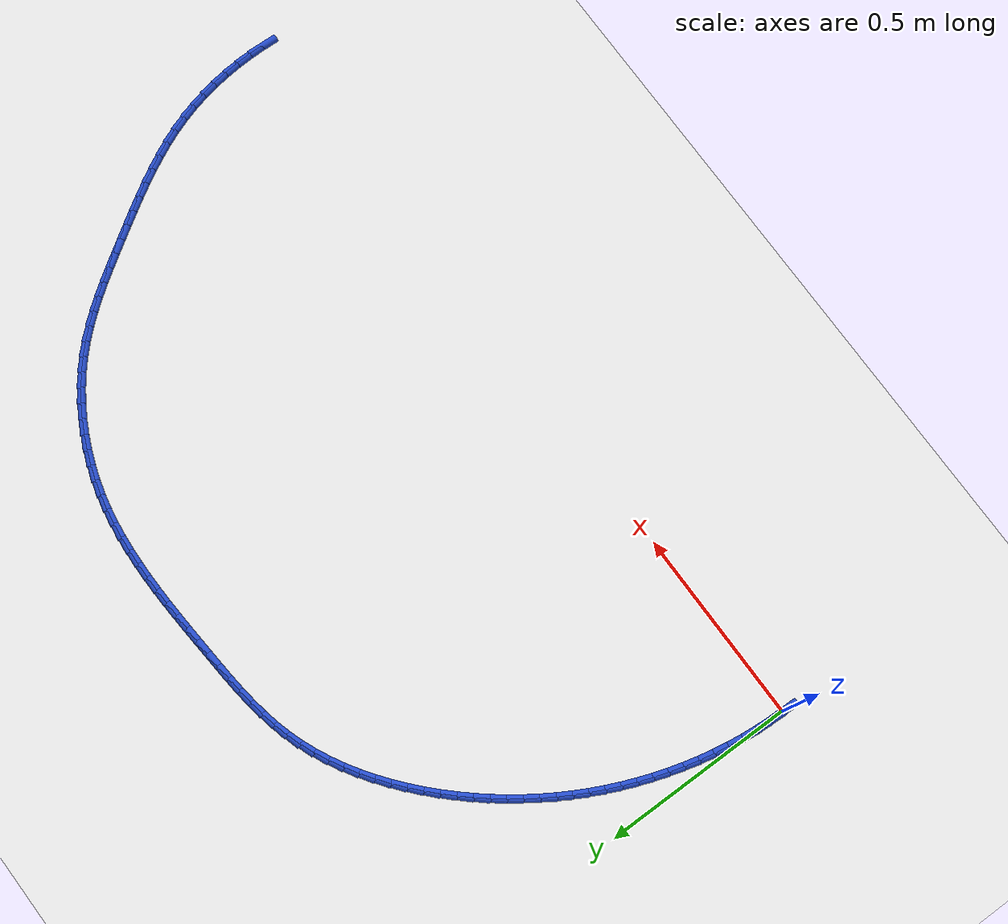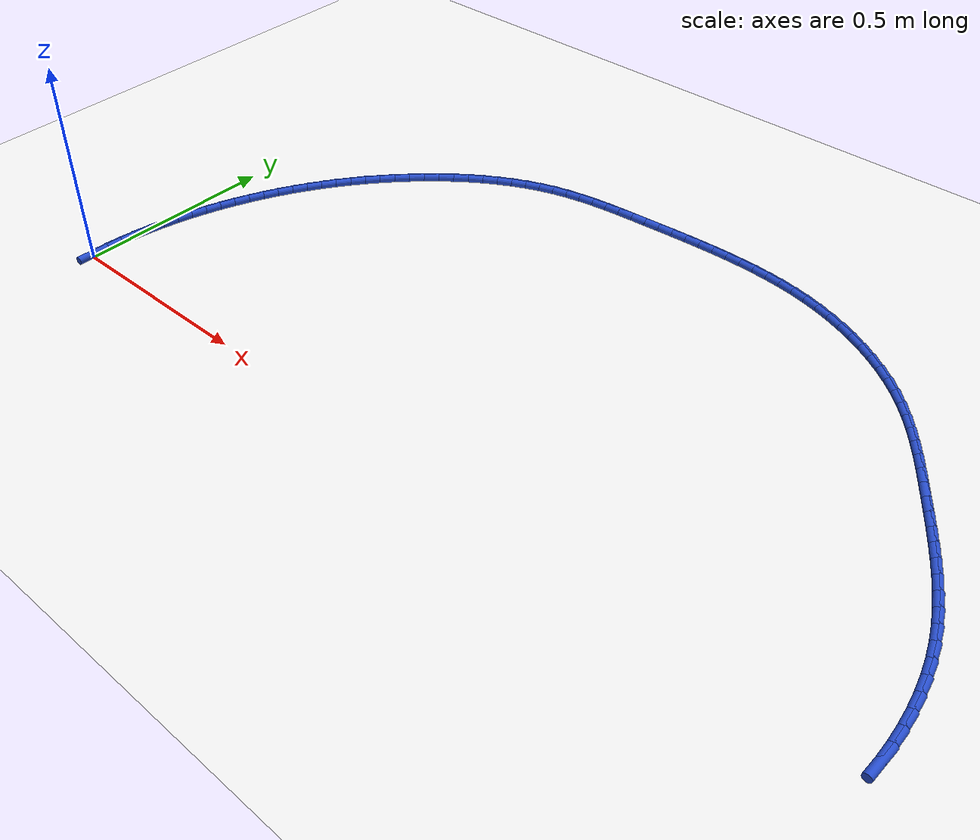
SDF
<sdf version="1.6">
 <world name="default">
  <model name="ground_plane">
   <static>1</static>
   <link name="link">
    <collision name="collision">
     <geometry><plane><normal>0 0 1</normal><size>100 100</size></plane></geometry>
     <surface><friction><ode><mu>100</mu><mu2>50</mu2></ode></friction></surface>
    </collision>
    <visual name="visual">
     <cast_shadows>0</cast_shadows>
     <geometry><plane><normal>0 0 1</normal><size>100 100</size></plane></geometry>
     <material>
      <script><uri>file://media/materials/scripts/gazebo.material</uri><name>Gazebo/WhiteGlow</name></script>
     </material>
    </visual>
   </link>
  </model>
  <model name="line">
   <link name="link_1">
    <pose>0.0009439849745583349 0.03859070573324368 0.01 0 1.57 1.5070628620395163</pose>
    <collision name="collision">
     <geometry><cylinder><radius>0.01</radius><length>0.08</length></cylinder></geometry>
    </collision>
    <visual name="visual">
     <material>
      <script><name>Gazebo/Blue</name><uri>file://media/materials/scripts/gazebo.material</uri></script>
     </material>
     <geometry><cylinder><radius>0.01</radius><length>0.08</length></cylinder></geometry>
    </visual>
   </link>
   <link name="link_2">
    <pose>0.003401936481926688 0.07710457887876052 0.01 0 1.57 1.4685931180485814</pose>
    <collision name="collision">
     <geometry><cylinder><radius>0.01</radius><length>0.08</length></cylinder></geometry>
    </collision>
    <visual name="visual">
     <material>
      <script><name>Gazebo/Blue</name><uri>file://media/materials/scripts/gazebo.material</uri></script>
     </material>
     <geometry><cylinder><radius>0.01</radius><length>0.08</length></cylinder></geometry>
    </visual>
   </link>
   <link name="link_3">
    <pose>0.007339192734409644 0.11549415470578164 0.01 0 1.57 1.4308945284231824</pose>
    <collision name="collision">
     <geometry><cylinder><radius>0.01</radius><length>0.08</length></cylinder></geometry>
    </collision>
    <visual name="visual">
     <material>
      <script><name>Gazebo/Blue</name><uri>file://media/materials/scripts/gazebo.material</uri></script>
     </material>
     <geometry><cylinder><radius>0.01</radius><length>0.08</length></cylinder></geometry>
    </visual>
   </link>
   <link name="link_4">
    <pose>0.01272109194431181 0.1537119684835384 0.01 0 1.57 1.393923783328831</pose>
    <collision name="collision">
     <geometry><cylinder><radius>0.01</radius><length>0.08</length></cylinder></geometry>
    </collision>
    <visual name="visual">
     <material>
      <script><name>Gazebo/Blue</name><uri>file://media/materials/scripts/gazebo.material</uri></script>
     </material>
     <geometry><cylinder><radius>0.01</radius><length>0.08</length></cylinder></geometry>
    </visual>
   </link>
   <link name="link_5">
    <pose>0.019512972323937797 0.19171055548126217 0.01 0 1.57 1.3576313293015498</pose>
    <collision name="collision">
     <geometry><cylinder><radius>0.01</radius><length>0.08</length></cylinder></geometry>
    </collision>
    <visual name="visual">
     <material>
      <script><name>Gazebo/Blue</name><uri>file://media/materials/scripts/gazebo.material</uri></script>
     </material>
     <geometry><cylinder><radius>0.01</radius><length>0.08</length></cylinder></geometry>
    </visual>
   </link>
   <link name="link_6">
    <pose>0.027680172085592203 0.22944245096818425 0.01 0 1.57 1.3219623319104445</pose>
    <collision name="collision">
     <geometry><cylinder><radius>0.01</radius><length>0.08</length></cylinder></geometry>
    </collision>
    <visual name="visual">
     <material>
      <script><name>Gazebo/Blue</name><uri>file://media/materials/scripts/gazebo.material</uri></script>
     </material>
     <geometry><cylinder><radius>0.01</radius><length>0.08</length></cylinder></geometry>
    </visual>
   </link>
   <link name="link_7">
    <pose>0.03718802944157963 0.26686019021353585 0.01 0 1.57 1.2868575112122136</pose>
    <collision name="collision">
     <geometry><cylinder><radius>0.01</radius><length>0.08</length></cylinder></geometry>
    </collision>
    <visual name="visual">
     <material>
      <script><name>Gazebo/Blue</name><uri>file://media/materials/scripts/gazebo.material</uri></script>
     </material>
     <geometry><cylinder><radius>0.01</radius><length>0.08</length></cylinder></geometry>
    </visual>
   </link>
   <link name="link_8">
    <pose>0.04800188260420471 0.30391630848654844 0.01 0 1.57 1.2522538491054644</pose>
    <collision name="collision">
     <geometry><cylinder><radius>0.01</radius><length>0.08</length></cylinder></geometry>
    </collision>
    <visual name="visual">
     <material>
      <script><name>Gazebo/Blue</name><uri>file://media/materials/scripts/gazebo.material</uri></script>
     </material>
     <geometry><cylinder><radius>0.01</radius><length>0.08</length></cylinder></geometry>
    </visual>
   </link>
   <link name="link_9">
    <pose>0.06008706978577201 0.34056334105645314 0.01 0 1.57 1.2180800754891843</pose>
    <collision name="collision">
     <geometry><cylinder><radius>0.01</radius><length>0.08</length></cylinder></geometry>
    </collision>
    <visual name="visual">
     <material>
      <script><name>Gazebo/Blue</name><uri>file://media/materials/scripts/gazebo.material</uri></script>
     </material>
     <geometry><cylinder><radius>0.01</radius><length>0.08</length></cylinder></geometry>
    </visual>
   </link>
   <link name="link_10">
    <pose>0.07340922310923467 0.3767540525552776 0.01 0 1.57 1.1841103861748596</pose>
    <collision name="collision">
     <geometry><cylinder><radius>0.01</radius><length>0.08</length></cylinder></geometry>
    </collision>
    <visual name="visual">
     <material>
      <script><name>Gazebo/Blue</name><uri>file://media/materials/scripts/gazebo.material</uri></script>
     </material>
     <geometry><cylinder><radius>0.01</radius><length>0.08</length></cylinder></geometry>
    </visual>
   </link>
   <link name="link_11">
    <pose>0.08794359539578611 0.4124487154418657 0.01 0 1.57 1.1501239313518643</pose>
    <collision name="collision">
     <geometry><cylinder><radius>0.01</radius><length>0.08</length></cylinder></geometry>
    </collision>
    <visual name="visual">
     <material>
      <script><name>Gazebo/Blue</name><uri>file://media/materials/scripts/gazebo.material</uri></script>
     </material>
     <geometry><cylinder><radius>0.01</radius><length>0.08</length></cylinder></geometry>
    </visual>
   </link>
   <link name="link_12">
    <pose>0.1036769828693089 0.447616610447237 0.01 0 1.57 1.1161009046123511</pose>
    <collision name="collision">
     <geometry><cylinder><radius>0.01</radius><length>0.08</length></cylinder></geometry>
    </collision>
    <visual name="visual">
     <material>
      <script><name>Gazebo/Blue</name><uri>file://media/materials/scripts/gazebo.material</uri></script>
     </material>
     <geometry><cylinder><radius>0.01</radius><length>0.08</length></cylinder></geometry>
    </visual>
   </link>
   <link name="link_13">
    <pose>0.120596864211239 0.48222755088050373 0.01 0 1.57 1.0820335895706508</pose>
    <collision name="collision">
     <geometry><cylinder><radius>0.01</radius><length>0.08</length></cylinder></geometry>
    </collision>
    <visual name="visual">
     <material>
      <script><name>Gazebo/Blue</name><uri>file://media/materials/scripts/gazebo.material</uri></script>
     </material>
     <geometry><cylinder><radius>0.01</radius><length>0.08</length></cylinder></geometry>
    </visual>
   </link>
   <link name="link_14">
    <pose>0.13869071810301242 0.5162513500507782 0.01 0 1.57 1.0479147006054637</pose>
    <collision name="collision">
     <geometry><cylinder><radius>0.01</radius><length>0.08</length></cylinder></geometry>
    </collision>
    <visual name="visual">
     <material>
      <script><name>Gazebo/Blue</name><uri>file://media/materials/scripts/gazebo.material</uri></script>
     </material>
     <geometry><cylinder><radius>0.01</radius><length>0.08</length></cylinder></geometry>
    </visual>
   </link>
   <link name="link_15">
    <pose>0.1579460232260652 0.5496578212671728 0.01 0 1.57 1.0137375584918418</pose>
    <collision name="collision">
     <geometry><cylinder><radius>0.01</radius><length>0.08</length></cylinder></geometry>
    </collision>
    <visual name="visual">
     <material>
      <script><name>Gazebo/Blue</name><uri>file://media/materials/scripts/gazebo.material</uri></script>
     </material>
     <geometry><cylinder><radius>0.01</radius><length>0.08</length></cylinder></geometry>
    </visual>
   </link>
   <link name="link_16">
    <pose>0.1783502582618334 0.5824167778388 0.01 0 1.57 0.9794962635091228</pose>
    <collision name="collision">
     <geometry><cylinder><radius>0.01</radius><length>0.08</length></cylinder></geometry>
    </collision>
    <visual name="visual">
     <material>
      <script><name>Gazebo/Blue</name><uri>file://media/materials/scripts/gazebo.material</uri></script>
     </material>
     <geometry><cylinder><radius>0.01</radius><length>0.08</length></cylinder></geometry>
    </visual>
   </link>
   <link name="link_17">
    <pose>0.1998909018917531 0.6144980330747718 0.01 0 1.57 0.9451858645704128</pose>
    <collision name="collision">
     <geometry><cylinder><radius>0.01</radius><length>0.08</length></cylinder></geometry>
    </collision>
    <visual name="visual">
     <material>
      <script><name>Gazebo/Blue</name><uri>file://media/materials/scripts/gazebo.material</uri></script>
     </material>
     <geometry><cylinder><radius>0.01</radius><length>0.08</length></cylinder></geometry>
    </visual>
   </link>
   <link name="link_18">
    <pose>0.22255543279726006 0.6458714002842006 0.01 0 1.57 0.9108025227620948</pose>
    <collision name="collision">
     <geometry><cylinder><radius>0.01</radius><length>0.08</length></cylinder></geometry>
    </collision>
    <visual name="visual">
     <material>
      <script><name>Gazebo/Blue</name><uri>file://media/materials/scripts/gazebo.material</uri></script>
     </material>
     <geometry><cylinder><radius>0.01</radius><length>0.08</length></cylinder></geometry>
    </visual>
   </link>
   <link name="link_19">
    <pose>0.2463313296597906 0.676506692776199 0.01 0 1.57 0.876343667512497</pose>
    <collision name="collision">
     <geometry><cylinder><radius>0.01</radius><length>0.08</length></cylinder></geometry>
    </collision>
    <visual name="visual">
     <material>
      <script><name>Gazebo/Blue</name><uri>file://media/materials/scripts/gazebo.material</uri></script>
     </material>
     <geometry><cylinder><radius>0.01</radius><length>0.08</length></cylinder></geometry>
    </visual>
   </link>
   <link name="link_20">
    <pose>0.27120607116078066 0.7063737238598793 0.01 0 1.57 0.8418081434369663</pose>
    <collision name="collision">
     <geometry><cylinder><radius>0.01</radius><length>0.08</length></cylinder></geometry>
    </collision>
    <visual name="visual">
     <material>
      <script><name>Gazebo/Blue</name><uri>file://media/materials/scripts/gazebo.material</uri></script>
     </material>
     <geometry><cylinder><radius>0.01</radius><length>0.08</length></cylinder></geometry>
    </visual>
   </link>
   <link name="link_21">
    <pose>0.2971671359816662 0.7354423068443537 0.01 0 1.57 0.8071945859510348</pose>
    <collision name="collision">
     <geometry><cylinder><radius>0.01</radius><length>0.08</length></cylinder></geometry>
    </collision>
    <visual name="visual">
     <material>
      <script><name>Gazebo/Blue</name><uri>file://media/materials/scripts/gazebo.material</uri></script>
     </material>
     <geometry><cylinder><radius>0.01</radius><length>0.08</length></cylinder></geometry>
    </visual>
   </link>
   <link name="link_22">
    <pose>0.32420197836281417 0.76368213002093 0.01 0 1.57 0.7720100453775888</pose>
    <collision name="collision">
     <geometry><cylinder><radius>0.01</radius><length>0.08</length></cylinder></geometry>
    </collision>
    <visual name="visual">
     <material>
      <script><name>Gazebo/Blue</name><uri>file://media/materials/scripts/gazebo.material</uri></script>
     </material>
     <geometry><cylinder><radius>0.01</radius><length>0.08</length></cylinder></geometry>
    </visual>
   </link>
   <link name="link_23">
    <pose>0.3522915115611468 0.7910294240859487 0.01 0 1.57 0.7349702492018789</pose>
    <collision name="collision">
     <geometry><cylinder><radius>0.01</radius><length>0.08</length></cylinder></geometry>
    </collision>
    <visual name="visual">
     <material>
      <script><name>Gazebo/Blue</name><uri>file://media/materials/scripts/gazebo.material</uri></script>
     </material>
     <geometry><cylinder><radius>0.01</radius><length>0.08</length></cylinder></geometry>
    </visual>
   </link>
   <link name="link_24">
    <pose>0.3814013230637737 0.8173420273344748 0.01 0 1.57 0.6956521147277249</pose>
    <collision name="collision">
     <geometry><cylinder><radius>0.01</radius><length>0.08</length></cylinder></geometry>
    </collision>
    <visual name="visual">
     <material>
      <script><name>Gazebo/Blue</name><uri>file://media/materials/scripts/gazebo.material</uri></script>
     </material>
     <geometry><cylinder><radius>0.01</radius><length>0.08</length></cylinder></geometry>
    </visual>
   </link>
   <link name="link_25">
    <pose>0.4114948082788859 0.8424665654221875 0.01 0 1.57 0.6537852112680071</pose>
    <collision name="collision">
     <geometry><cylinder><radius>0.01</radius><length>0.08</length></cylinder></geometry>
    </collision>
    <visual name="visual">
     <material>
      <script><name>Gazebo/Blue</name><uri>file://media/materials/scripts/gazebo.material</uri></script>
     </material>
     <geometry><cylinder><radius>0.01</radius><length>0.08</length></cylinder></geometry>
    </visual>
   </link>
   <link name="link_26">
    <pose>0.442535362614675 0.8662496640047664 0.01 0 1.57 0.6090977032960706</pose>
    <collision name="collision">
     <geometry><cylinder><radius>0.01</radius><length>0.08</length></cylinder></geometry>
    </collision>
    <visual name="visual">
     <material>
      <script><name>Gazebo/Blue</name><uri>file://media/materials/scripts/gazebo.material</uri></script>
     </material>
     <geometry><cylinder><radius>0.01</radius><length>0.08</length></cylinder></geometry>
    </visual>
   </link>
   <link name="link_27">
    <pose>0.4744863814793317 0.888537948737891 0.01 0 1.57 0.5613231457653641</pose>
    <collision name="collision">
     <geometry><cylinder><radius>0.01</radius><length>0.08</length></cylinder></geometry>
    </collision>
    <visual name="visual">
     <material>
      <script><name>Gazebo/Blue</name><uri>file://media/materials/scripts/gazebo.material</uri></script>
     </material>
     <geometry><cylinder><radius>0.01</radius><length>0.08</length></cylinder></geometry>
    </visual>
   </link>
   <link name="link_28">
    <pose>0.5073112602810474 0.9091780452772408 0.01 0 1.57 0.5102109944881843</pose>
    <collision name="collision">
     <geometry><cylinder><radius>0.01</radius><length>0.08</length></cylinder></geometry>
    </collision>
    <visual name="visual">
     <material>
      <script><name>Gazebo/Blue</name><uri>file://media/materials/scripts/gazebo.material</uri></script>
     </material>
     <geometry><cylinder><radius>0.01</radius><length>0.08</length></cylinder></geometry>
    </visual>
   </link>
   <link name="link_29">
    <pose>0.5409733944280133 0.9280165792784953 0.01 0 1.57 0.4555415353464049</pose>
    <collision name="collision">
     <geometry><cylinder><radius>0.01</radius><length>0.08</length></cylinder></geometry>
    </collision>
    <visual name="visual">
     <material>
      <script><name>Gazebo/Blue</name><uri>file://media/materials/scripts/gazebo.material</uri></script>
     </material>
     <geometry><cylinder><radius>0.01</radius><length>0.08</length></cylinder></geometry>
    </visual>
   </link>
   <link name="link_30">
    <pose>0.5754361793284204 0.9449001763973337 0.01 0 1.57 0.3971456847346548</pose>
    <collision name="collision">
     <geometry><cylinder><radius>0.01</radius><length>0.08</length></cylinder></geometry>
    </collision>
    <visual name="visual">
     <material>
      <script><name>Gazebo/Blue</name><uri>file://media/materials/scripts/gazebo.material</uri></script>
     </material>
     <geometry><cylinder><radius>0.01</radius><length>0.08</length></cylinder></geometry>
    </visual>
   </link>
   <link name="link_31">
    <pose>0.61066301039046 0.9596754622894359 0.01 0 1.57 0.3349297929277181</pose>
    <collision name="collision">
     <geometry><cylinder><radius>0.01</radius><length>0.08</length></cylinder></geometry>
    </collision>
    <visual name="visual">
     <material>
      <script><name>Gazebo/Blue</name><uri>file://media/materials/scripts/gazebo.material</uri></script>
     </material>
     <geometry><cylinder><radius>0.01</radius><length>0.08</length></cylinder></geometry>
    </visual>
   </link>
   <link name="link_32">
    <pose>0.6466172818232039 0.9721890732607043 0.01 0 1.57 0.2713595152694135</pose>
    <collision name="collision">
     <geometry><cylinder><radius>0.01</radius><length>0.08</length></cylinder></geometry>
    </collision>
    <visual name="visual">
     <material>
      <script><name>Gazebo/Blue</name><uri>file://media/materials/scripts/gazebo.material</uri></script>
     </material>
     <geometry><cylinder><radius>0.01</radius><length>0.08</length></cylinder></geometry>
    </visual>
   </link>
   <link name="link_33">
    <pose>0.683251807551593 0.9823816165549838 0.01 0 1.57 0.21511644359591622</pose>
    <collision name="collision">
     <geometry><cylinder><radius>0.01</radius><length>0.08</length></cylinder></geometry>
    </collision>
    <visual name="visual">
     <material>
      <script><name>Gazebo/Blue</name><uri>file://media/materials/scripts/gazebo.material</uri></script>
     </material>
     <geometry><cylinder><radius>0.01</radius><length>0.08</length></cylinder></geometry>
    </visual>
   </link>
   <link name="link_34">
    <pose>0.7204830525690591 0.9905165398186103 0.01 0 1.57 0.16825621912814284</pose>
    <collision name="collision">
     <geometry><cylinder><radius>0.01</radius><length>0.08</length></cylinder></geometry>
    </collision>
    <visual name="visual">
     <material>
      <script><name>Gazebo/Blue</name><uri>file://media/materials/scripts/gazebo.material</uri></script>
     </material>
     <geometry><cylinder><radius>0.01</radius><length>0.08</length></cylinder></geometry>
    </visual>
   </link>
   <link name="link_35">
    <pose>0.7582196820349184 0.9969265665054989 0.01 0 1.57 0.1307765694079937</pose>
    <collision name="collision">
     <geometry><cylinder><radius>0.01</radius><length>0.08</length></cylinder></geometry>
    </collision>
    <visual name="visual">
     <material>
      <script><name>Gazebo/Blue</name><uri>file://media/materials/scripts/gazebo.material</uri></script>
     </material>
     <geometry><cylinder><radius>0.01</radius><length>0.08</length></cylinder></geometry>
    </visual>
   </link>
   <link name="link_36">
    <pose>0.7963703611084877 1.0019444200695669 0.01 0 1.57 0.10252603342590993</pose>
    <collision name="collision">
     <geometry><cylinder><radius>0.01</radius><length>0.08</length></cylinder></geometry>
    </collision>
    <visual name="visual">
     <material>
      <script><name>Gazebo/Blue</name><uri>file://media/materials/scripts/gazebo.material</uri></script>
     </material>
     <geometry><cylinder><radius>0.01</radius><length>0.08</length></cylinder></geometry>
    </visual>
   </link>
   <link name="link_37">
    <pose>0.8348437549490839 1.0059028239647307 0.01 0 1.57 0.08330236118696152</pose>
    <collision name="collision">
     <geometry><cylinder><radius>0.01</radius><length>0.08</length></cylinder></geometry>
    </collision>
    <visual name="visual">
     <material>
      <script><name>Gazebo/Blue</name><uri>file://media/materials/scripts/gazebo.material</uri></script>
     </material>
     <geometry><cylinder><radius>0.01</radius><length>0.08</length></cylinder></geometry>
    </visual>
   </link>
   <link name="link_38">
    <pose>0.8735485287160228 1.0091345016449063 0.01 0 1.57 0.07292203499505044</pose>
    <collision name="collision">
     <geometry><cylinder><radius>0.01</radius><length>0.08</length></cylinder></geometry>
    </collision>
    <visual name="visual">
     <material>
      <script><name>Gazebo/Blue</name><uri>file://media/materials/scripts/gazebo.material</uri></script>
     </material>
     <geometry><cylinder><radius>0.01</radius><length>0.08</length></cylinder></geometry>
    </visual>
   </link>
   <link name="link_39">
    <pose>0.912393347568622 1.011972176564011 0.01 0 1.57 0.07037023695720648</pose>
    <collision name="collision">
     <geometry><cylinder><radius>0.01</radius><length>0.08</length></cylinder></geometry>
    </collision>
    <visual name="visual">
     <material>
      <script><name>Gazebo/Blue</name><uri>file://media/materials/scripts/gazebo.material</uri></script>
     </material>
     <geometry><cylinder><radius>0.01</radius><length>0.08</length></cylinder></geometry>
    </visual>
   </link>
   <link name="link_40">
    <pose>0.9512912632057258 1.0147139593415782 0.01 0 1.57 0.06763601080576731</pose>
    <collision name="collision">
     <geometry><cylinder><radius>0.01</radius><length>0.08</length></cylinder></geometry>
    </collision>
    <visual name="visual">
     <material>
      <script><name>Gazebo/Blue</name><uri>file://media/materials/scripts/gazebo.material</uri></script>
     </material>
     <geometry><cylinder><radius>0.01</radius><length>0.08</length></cylinder></geometry>
    </visual>
   </link>
   <link name="link_41">
    <pose>0.9901944525393018 1.0173492355729898 0.01 0 1.57 0.06052017866593311</pose>
    <collision name="collision">
     <geometry><cylinder><radius>0.01</radius><length>0.08</length></cylinder></geometry>
    </collision>
    <visual name="visual">
     <material>
      <script><name>Gazebo/Blue</name><uri>file://media/materials/scripts/gazebo.material</uri></script>
     </material>
     <geometry><cylinder><radius>0.01</radius><length>0.08</length></cylinder></geometry>
    </visual>
   </link>
   <link name="link_42">
    <pose>1.0290756459881667 1.01970520945211 0.01 0 1.57 0.048952177614966064</pose>
    <collision name="collision">
     <geometry><cylinder><radius>0.01</radius><length>0.08</length></cylinder></geometry>
    </collision>
    <visual name="visual">
     <material>
      <script><name>Gazebo/Blue</name><uri>file://media/materials/scripts/gazebo.material</uri></script>
     </material>
     <geometry><cylinder><radius>0.01</radius><length>0.08</length></cylinder></geometry>
    </visual>
   </link>
   <link name="link_43">
    <pose>1.0679077564011572 1.0216076456736218 0.01 0 1.57 0.03287764250212933</pose>
    <collision name="collision">
     <geometry><cylinder><radius>0.01</radius><length>0.08</length></cylinder></geometry>
    </collision>
    <visual name="visual">
     <material>
      <script><name>Gazebo/Blue</name><uri>file://media/materials/scripts/gazebo.material</uri></script>
     </material>
     <geometry><cylinder><radius>0.01</radius><length>0.08</length></cylinder></geometry>
    </visual>
   </link>
   <link name="link_44">
    <pose>1.10666369662711 1.0228823089322074 0.01 0 1.57 0.012227648856373572</pose>
    <collision name="collision">
     <geometry><cylinder><radius>0.01</radius><length>0.08</length></cylinder></geometry>
    </collision>
    <visual name="visual">
     <material>
      <script><name>Gazebo/Blue</name><uri>file://media/materials/scripts/gazebo.material</uri></script>
     </material>
     <geometry><cylinder><radius>0.01</radius><length>0.08</length></cylinder></geometry>
    </visual>
   </link>
   <link name="link_45">
    <pose>1.145316379514862 1.0233549639225499 0.01 0 1.57 -0.013071893357528013</pose>
    <collision name="collision">
     <geometry><cylinder><radius>0.01</radius><length>0.08</length></cylinder></geometry>
    </collision>
    <visual name="visual">
     <material>
      <script><name>Gazebo/Blue</name><uri>file://media/materials/scripts/gazebo.material</uri></script>
     </material>
     <geometry><cylinder><radius>0.01</radius><length>0.08</length></cylinder></geometry>
    </visual>
   </link>
   <link name="link_46">
    <pose>1.1838387179132503 1.0228513753393318 0.01 0 1.57 -0.043087390800113444</pose>
    <collision name="collision">
     <geometry><cylinder><radius>0.01</radius><length>0.08</length></cylinder></geometry>
    </collision>
    <visual name="visual">
     <material>
      <script><name>Gazebo/Blue</name><uri>file://media/materials/scripts/gazebo.material</uri></script>
     </material>
     <geometry><cylinder><radius>0.01</radius><length>0.08</length></cylinder></geometry>
    </visual>
   </link>
   <link name="link_47">
    <pose>1.2222036246711114 1.0211973078772358 0.01 0 1.57 -0.07786091044570956</pose>
    <collision name="collision">
     <geometry><cylinder><radius>0.01</radius><length>0.08</length></cylinder></geometry>
    </collision>
    <visual name="visual">
     <material>
      <script><name>Gazebo/Blue</name><uri>file://media/materials/scripts/gazebo.material</uri></script>
     </material>
     <geometry><cylinder><radius>0.01</radius><length>0.08</length></cylinder></geometry>
    </visual>
   </link>
   <link name="link_48">
    <pose>1.2603840126372823 1.0182185262309447 0.01 0 1.57 -0.11738970162927613</pose>
    <collision name="collision">
     <geometry><cylinder><radius>0.01</radius><length>0.08</length></cylinder></geometry>
    </collision>
    <visual name="visual">
     <material>
      <script><name>Gazebo/Blue</name><uri>file://media/materials/scripts/gazebo.material</uri></script>
     </material>
     <geometry><cylinder><radius>0.01</radius><length>0.08</length></cylinder></geometry>
    </visual>
   </link>
   <link name="link_49">
    <pose>1.2983527946605993 1.0137407950951403 0.01 0 1.57 -0.16160253391109483</pose>
    <collision name="collision">
     <geometry><cylinder><radius>0.01</radius><length>0.08</length></cylinder></geometry>
    </collision>
    <visual name="visual">
     <material>
      <script><name>Gazebo/Blue</name><uri>file://media/materials/scripts/gazebo.material</uri></script>
     </material>
     <geometry><cylinder><radius>0.01</radius><length>0.08</length></cylinder></geometry>
    </visual>
   </link>
   <link name="link_50">
    <pose>1.3360828835898995 1.007589879164506 0.01 0 1.57 -0.21033449076955885</pose>
    <collision name="collision">
     <geometry><cylinder><radius>0.01</radius><length>0.08</length></cylinder></geometry>
    </collision>
    <visual name="visual">
     <material>
      <script><name>Gazebo/Blue</name><uri>file://media/materials/scripts/gazebo.material</uri></script>
     </material>
     <geometry><cylinder><radius>0.01</radius><length>0.08</length></cylinder></geometry>
    </visual>
   </link>
   <link name="link_51">
    <pose>1.3735471922740197 0.9995915431337246 0.01 0 1.57 -0.26317317947111213</pose>
    <collision name="collision">
     <geometry><cylinder><radius>0.01</radius><length>0.08</length></cylinder></geometry>
    </collision>
    <visual name="visual">
     <material>
      <script><name>Gazebo/Blue</name><uri>file://media/materials/scripts/gazebo.material</uri></script>
     </material>
     <geometry><cylinder><radius>0.01</radius><length>0.08</length></cylinder></geometry>
    </visual>
   </link>
   <link name="link_52">
    <pose>1.410715014947106 0.9895777080278719 0.01 0 1.57 -0.3174085424207179</pose>
    <collision name="collision">
     <geometry><cylinder><radius>0.01</radius><length>0.08</length></cylinder></geometry>
    </collision>
    <visual name="visual">
     <material>
      <script><name>Gazebo/Blue</name><uri>file://media/materials/scripts/gazebo.material</uri></script>
     </material>
     <geometry><cylinder><radius>0.01</radius><length>0.08</length></cylinder></geometry>
    </visual>
   </link>
   <link name="link_53">
    <pose>1.4474866739502357 0.9774976363957565 0.01 0 1.57 -0.37109705965039824</pose>
    <collision name="collision">
     <geometry><cylinder><radius>0.01</radius><length>0.08</length></cylinder></geometry>
    </collision>
    <visual name="visual">
     <material>
      <script><name>Gazebo/Blue</name><uri>file://media/materials/scripts/gazebo.material</uri></script>
     </material>
     <geometry><cylinder><radius>0.01</radius><length>0.08</length></cylinder></geometry>
    </visual>
   </link>
   <link name="link_54">
    <pose>1.4837006176620018 0.9634058566374532 0.01 0 1.57 -0.4245772907462162</pose>
    <collision name="collision">
     <geometry><cylinder><radius>0.01</radius><length>0.08</length></cylinder></geometry>
    </collision>
    <visual name="visual">
     <material>
      <script><name>Gazebo/Blue</name><uri>file://media/materials/scripts/gazebo.material</uri></script>
     </material>
     <geometry><cylinder><radius>0.01</radius><length>0.08</length></cylinder></geometry>
    </visual>
   </link>
   <link name="link_55">
    <pose>1.51919310068289 0.9473606294163424 0.01 0 1.57 -0.4782590592508051</pose>
    <collision name="collision">
     <geometry><cylinder><radius>0.01</radius><length>0.08</length></cylinder></geometry>
    </collision>
    <visual name="visual">
     <material>
      <script><name>Gazebo/Blue</name><uri>file://media/materials/scripts/gazebo.material</uri></script>
     </material>
     <geometry><cylinder><radius>0.01</radius><length>0.08</length></cylinder></geometry>
    </visual>
   </link>
   <link name="link_56">
    <pose>1.5538003776133873 0.9294202153958064 0.01 0 1.57 -0.5325460859215124</pose>
    <collision name="collision">
     <geometry><cylinder><radius>0.01</radius><length>0.08</length></cylinder></geometry>
    </collision>
    <visual name="visual">
     <material>
      <script><name>Gazebo/Blue</name><uri>file://media/materials/scripts/gazebo.material</uri></script>
     </material>
     <geometry><cylinder><radius>0.01</radius><length>0.08</length></cylinder></geometry>
    </visual>
   </link>
   <link name="link_57">
    <pose>1.5873587030539802 0.9096428752392258 0.01 0 1.57 -0.5878367783793388</pose>
    <collision name="collision">
     <geometry><cylinder><radius>0.01</radius><length>0.08</length></cylinder></geometry>
    </collision>
    <visual name="visual">
     <material>
      <script><name>Gazebo/Blue</name><uri>file://media/materials/scripts/gazebo.material</uri></script>
     </material>
     <geometry><cylinder><radius>0.01</radius><length>0.08</length></cylinder></geometry>
    </visual>
   </link>
   <link name="link_58">
    <pose>1.6197043316051563 0.888086869609982 0.01 0 1.57 -0.6445237044924059</pose>
    <collision name="collision">
     <geometry><cylinder><radius>0.01</radius><length>0.08</length></cylinder></geometry>
    </collision>
    <visual name="visual">
     <material>
      <script><name>Gazebo/Blue</name><uri>file://media/materials/scripts/gazebo.material</uri></script>
     </material>
     <geometry><cylinder><radius>0.01</radius><length>0.08</length></cylinder></geometry>
    </visual>
   </link>
   <link name="link_59">
    <pose>1.6506735178674006 0.8648104591714563 0.01 0 1.57 -0.7029910225501479</pose>
    <collision name="collision">
     <geometry><cylinder><radius>0.01</radius><length>0.08</length></cylinder></geometry>
    </collision>
    <visual name="visual">
     <material>
      <script><name>Gazebo/Blue</name><uri>file://media/materials/scripts/gazebo.material</uri></script>
     </material>
     <geometry><cylinder><radius>0.01</radius><length>0.08</length></cylinder></geometry>
    </visual>
   </link>
   <link name="link_60">
    <pose>1.6801025164411998 0.8398719045870299 0.01 0 1.57 -0.7633550163235864</pose>
    <collision name="collision">
     <geometry><cylinder><radius>0.01</radius><length>0.08</length></cylinder></geometry>
    </collision>
    <visual name="visual">
     <material>
      <script><name>Gazebo/Blue</name><uri>file://media/materials/scripts/gazebo.material</uri></script>
     </material>
     <geometry><cylinder><radius>0.01</radius><length>0.08</length></cylinder></geometry>
    </visual>
   </link>
   <link name="link_61">
    <pose>1.7078377859886962 0.8133331980856022 0.01 0 1.57 -0.8207569188890868</pose>
    <collision name="collision">
     <geometry><cylinder><radius>0.01</radius><length>0.08</length></cylinder></geometry>
    </collision>
    <visual name="visual">
     <material>
      <script><name>Gazebo/Blue</name><uri>file://media/materials/scripts/gazebo.material</uri></script>
     </material>
     <geometry><cylinder><radius>0.01</radius><length>0.08</length></cylinder></geometry>
    </visual>
   </link>
   <link name="link_62">
    <pose>1.7339274525710753 0.7853300804814889 0.01 0 1.57 -0.8702334164334655</pose>
    <collision name="collision">
     <geometry><cylinder><radius>0.01</radius><length>0.08</length></cylinder></geometry>
    </collision>
    <visual name="visual">
     <material>
      <script><name>Gazebo/Blue</name><uri>file://media/materials/scripts/gazebo.material</uri></script>
     </material>
     <geometry><cylinder><radius>0.01</radius><length>0.08</length></cylinder></geometry>
    </visual>
   </link>
   <link name="link_63">
    <pose>1.7586045077514432 0.7560658968191533 0.01 0 1.57 -0.911347549807617</pose>
    <collision name="collision">
     <geometry><cylinder><radius>0.01</radius><length>0.08</length></cylinder></geometry>
    </collision>
    <visual name="visual">
     <material>
      <script><name>Gazebo/Blue</name><uri>file://media/materials/scripts/gazebo.material</uri></script>
     </material>
     <geometry><cylinder><radius>0.01</radius><length>0.08</length></cylinder></geometry>
    </visual>
   </link>
   <link name="link_64">
    <pose>1.782108778801453 0.7257464919215956 0.01 0 1.57 -0.9440362224663276</pose>
    <collision name="collision">
     <geometry><cylinder><radius>0.01</radius><length>0.08</length></cylinder></geometry>
    </collision>
    <visual name="visual">
     <material>
      <script><name>Gazebo/Blue</name><uri>file://media/materials/scripts/gazebo.material</uri></script>
     </material>
     <geometry><cylinder><radius>0.01</radius><length>0.08</length></cylinder></geometry>
    </visual>
   </link>
   <link name="link_65">
    <pose>1.804680092992756 0.6945777106118158 0.01 0 1.57 -0.9683548944947087</pose>
    <collision name="collision">
     <geometry><cylinder><radius>0.01</radius><length>0.08</length></cylinder></geometry>
    </collision>
    <visual name="visual">
     <material>
      <script><name>Gazebo/Blue</name><uri>file://media/materials/scripts/gazebo.material</uri></script>
     </material>
     <geometry><cylinder><radius>0.01</radius><length>0.08</length></cylinder></geometry>
    </visual>
   </link>
   <link name="link_66">
    <pose>1.8265582775970062 0.6627653977128141 0.01 0 1.57 -0.9844079972430734</pose>
    <collision name="collision">
     <geometry><cylinder><radius>0.01</radius><length>0.08</length></cylinder></geometry>
    </collision>
    <visual name="visual">
     <material>
      <script><name>Gazebo/Blue</name><uri>file://media/materials/scripts/gazebo.material</uri></script>
     </material>
     <geometry><cylinder><radius>0.01</radius><length>0.08</length></cylinder></geometry>
    </visual>
   </link>
   <link name="link_67">
    <pose>1.8479831598858563 0.630515398047591 0.01 0 1.57 -0.9922985293581319</pose>
    <collision name="collision">
     <geometry><cylinder><radius>0.01</radius><length>0.08</length></cylinder></geometry>
    </collision>
    <visual name="visual">
     <material>
      <script><name>Gazebo/Blue</name><uri>file://media/materials/scripts/gazebo.material</uri></script>
     </material>
     <geometry><cylinder><radius>0.01</radius><length>0.08</length></cylinder></geometry>
    </visual>
   </link>
   <link name="link_68">
    <pose>1.8691945671309578 0.598033556439146 0.01 0 1.57 -0.9943691802516044</pose>
    <collision name="collision">
     <geometry><cylinder><radius>0.01</radius><length>0.08</length></cylinder></geometry>
    </collision>
    <visual name="visual">
     <material>
      <script><name>Gazebo/Blue</name><uri>file://media/materials/scripts/gazebo.material</uri></script>
     </material>
     <geometry><cylinder><radius>0.01</radius><length>0.08</length></cylinder></geometry>
    </visual>
   </link>
   <link name="link_69">
    <pose>1.8903574860707593 0.5654789191757631 0.01 0 1.57 -1.0000989680287546</pose>
    <collision name="collision">
     <geometry><cylinder><radius>0.01</radius><length>0.08</length></cylinder></geometry>
    </collision>
    <visual name="visual">
     <material>
      <script><name>Gazebo/Blue</name><uri>file://media/materials/scripts/gazebo.material</uri></script>
     </material>
     <geometry><cylinder><radius>0.01</radius><length>0.08</length></cylinder></geometry>
    </visual>
   </link>
   <link name="link_70">
    <pose>1.9113256162825027 0.5328158815672125 0.01 0 1.57 -1.0119761493608426</pose>
    <collision name="collision">
     <geometry><cylinder><radius>0.01</radius><length>0.08</length></cylinder></geometry>
    </collision>
    <visual name="visual">
     <material>
      <script><name>Gazebo/Blue</name><uri>file://media/materials/scripts/gazebo.material</uri></script>
     </material>
     <geometry><cylinder><radius>0.01</radius><length>0.08</length></cylinder></geometry>
    </visual>
   </link>
   <link name="link_71">
    <pose>1.9318717364915967 0.49995823830443303 0.01 0 1.57 -1.0300703224101915</pose>
    <collision name="collision">
     <geometry><cylinder><radius>0.01</radius><length>0.08</length></cylinder></geometry>
    </collision>
    <visual name="visual">
     <material>
      <script><name>Gazebo/Blue</name><uri>file://media/materials/scripts/gazebo.material</uri></script>
     </material>
     <geometry><cylinder><radius>0.01</radius><length>0.08</length></cylinder></geometry>
    </visual>
   </link>
   <link name="link_72">
    <pose>1.9517686252516677 0.466819783970947 0.01 0 1.57 -1.0544794887511297</pose>
    <collision name="collision">
     <geometry><cylinder><radius>0.01</radius><length>0.08</length></cylinder></geometry>
    </collision>
    <visual name="visual">
     <material>
      <script><name>Gazebo/Blue</name><uri>file://media/materials/scripts/gazebo.material</uri></script>
     </material>
     <geometry><cylinder><radius>0.01</radius><length>0.08</length></cylinder></geometry>
    </visual>
   </link>
   <link name="link_73">
    <pose>1.9707890611163401 0.4333143131502757 0.01 0 1.57 -1.0853097141305685</pose>
    <collision name="collision">
     <geometry><cylinder><radius>0.01</radius><length>0.08</length></cylinder></geometry>
    </collision>
    <visual name="visual">
     <material>
      <script><name>Gazebo/Blue</name><uri>file://media/materials/scripts/gazebo.material</uri></script>
     </material>
     <geometry><cylinder><radius>0.01</radius><length>0.08</length></cylinder></geometry>
    </visual>
   </link>
   <link name="link_74">
    <pose>1.9887058226392427 0.3993556204259407 0.01 0 1.57 -1.1226459105466315</pose>
    <collision name="collision">
     <geometry><cylinder><radius>0.01</radius><length>0.08</length></cylinder></geometry>
    </collision>
    <visual name="visual">
     <material>
      <script><name>Gazebo/Blue</name><uri>file://media/materials/scripts/gazebo.material</uri></script>
     </material>
     <geometry><cylinder><radius>0.01</radius><length>0.08</length></cylinder></geometry>
    </visual>
   </link>
   <link name="link_75">
    <pose>2.005291688373999 0.36485750038146414 0.01 0 1.57 -1.1665129581584885</pose>
    <collision name="collision">
     <geometry><cylinder><radius>0.01</radius><length>0.08</length></cylinder></geometry>
    </collision>
    <visual name="visual">
     <material>
      <script><name>Gazebo/Blue</name><uri>file://media/materials/scripts/gazebo.material</uri></script>
     </material>
     <geometry><cylinder><radius>0.01</radius><length>0.08</length></cylinder></geometry>
    </visual>
   </link>
   <link name="link_76">
    <pose>2.020319436874237 0.32973374760036755 0.01 0 1.57 -1.2168278157753392</pose>
    <collision name="collision">
     <geometry><cylinder><radius>0.01</radius><length>0.08</length></cylinder></geometry>
    </collision>
    <visual name="visual">
     <material>
      <script><name>Gazebo/Blue</name><uri>file://media/materials/scripts/gazebo.material</uri></script>
     </material>
     <geometry><cylinder><radius>0.01</radius><length>0.08</length></cylinder></geometry>
    </visual>
   </link>
   <link name="link_77">
    <pose>2.0335618466935816 0.2938981566661723 0.01 0 1.57 -1.272402987270162</pose>
    <collision name="collision">
     <geometry><cylinder><radius>0.01</radius><length>0.08</length></cylinder></geometry>
    </collision>
    <visual name="visual">
     <material>
      <script><name>Gazebo/Blue</name><uri>file://media/materials/scripts/gazebo.material</uri></script>
     </material>
     <geometry><cylinder><radius>0.01</radius><length>0.08</length></cylinder></geometry>
    </visual>
   </link>
   <link name="link_78">
    <pose>2.0448227569032795 0.2572864452271077 0.01 0 1.57 -1.3275547377232457</pose>
    <collision name="collision">
     <geometry><cylinder><radius>0.01</radius><length>0.08</length></cylinder></geometry>
    </collision>
    <visual name="visual">
     <material>
      <script><name>Gazebo/Blue</name><uri>file://media/materials/scripts/gazebo.material</uri></script>
     </material>
     <geometry><cylinder><radius>0.01</radius><length>0.08</length></cylinder></geometry>
    </visual>
   </link>
   <link name="link_79">
    <pose>2.0540852902902023 0.2199608725604447 0.01 0 1.57 -1.3803790767591835</pose>
    <collision name="collision">
     <geometry><cylinder><radius>0.01</radius><length>0.08</length></cylinder></geometry>
    </collision>
    <visual name="visual">
     <material>
      <script><name>Gazebo/Blue</name><uri>file://media/materials/scripts/gazebo.material</uri></script>
     </material>
     <geometry><cylinder><radius>0.01</radius><length>0.08</length></cylinder></geometry>
    </visual>
   </link>
   <link name="link_80">
    <pose>2.0613967553815438 0.18202900137836733 0.01 0 1.57 -1.4309983802820105</pose>
    <collision name="collision">
     <geometry><cylinder><radius>0.01</radius><length>0.08</length></cylinder></geometry>
    </collision>
    <visual name="visual">
     <material>
      <script><name>Gazebo/Blue</name><uri>file://media/materials/scripts/gazebo.material</uri></script>
     </material>
     <geometry><cylinder><radius>0.01</radius><length>0.08</length></cylinder></geometry>
    </visual>
   </link>
   <link name="link_81">
    <pose>2.0668045422284096 0.143598451934083 0.01 0 1.57 -1.4795677357813999</pose>
    <collision name="collision">
     <geometry><cylinder><radius>0.01</radius><length>0.08</length></cylinder></geometry>
    </collision>
    <visual name="visual">
     <material>
      <script><name>Gazebo/Blue</name><uri>file://media/materials/scripts/gazebo.material</uri></script>
     </material>
     <geometry><cylinder><radius>0.01</radius><length>0.08</length></cylinder></geometry>
    </visual>
   </link>
   <link name="link_82">
    <pose>2.0703560408819044 0.10477684448079928 0.01 0 1.57 -1.526263750414685</pose>
    <collision name="collision">
     <geometry><cylinder><radius>0.01</radius><length>0.08</length></cylinder></geometry>
    </collision>
    <visual name="visual">
     <material>
      <script><name>Gazebo/Blue</name><uri>file://media/materials/scripts/gazebo.material</uri></script>
     </material>
     <geometry><cylinder><radius>0.01</radius><length>0.08</length></cylinder></geometry>
    </visual>
   </link>
   <link name="link_83">
    <pose>2.0720986413931333 0.06567179927172462 0.01 0 1.57 1.570314983535988</pose>
    <collision name="collision">
     <geometry><cylinder><radius>0.01</radius><length>0.08</length></cylinder></geometry>
    </collision>
    <visual name="visual">
     <material>
      <script><name>Gazebo/Blue</name><uri>file://media/materials/scripts/gazebo.material</uri></script>
     </material>
     <geometry><cylinder><radius>0.01</radius><length>0.08</length></cylinder></geometry>
    </visual>
   </link>
   <link name="link_84">
    <pose>2.0720797338132027 0.0263909365600661 0.01 0 1.57 1.526782406508398</pose>
    <collision name="collision">
     <geometry><cylinder><radius>0.01</radius><length>0.08</length></cylinder></geometry>
    </collision>
    <visual name="visual">
     <material>
      <script><name>Gazebo/Blue</name><uri>file://media/materials/scripts/gazebo.material</uri></script>
     </material>
     <geometry><cylinder><radius>0.01</radius><length>0.08</length></cylinder></geometry>
    </visual>
   </link>
   <link name="link_170">
    <pose>-2.6020852139652106e-17 6.245004513516506e-17 0.01 0 1.57 1.546137796102022</pose>
    <collision name="collision">
     <geometry><cylinder><radius>0.01</radius><length>0.08</length></cylinder></geometry>
    </collision>
    <visual name="visual">
     <material>
      <script><name>Gazebo/Blue</name><uri>file://media/materials/scripts/gazebo.material</uri></script>
     </material>
     <geometry><cylinder><radius>0.01</radius><length>0.08</length></cylinder></geometry>
    </visual>
   </link>
   <link name="link_171">
    <pose>0.0009517073299588775 0.03858763690967951 0.01 0 1.57 1.5461377961020224</pose>
    <collision name="collision">
     <geometry><cylinder><radius>0.01</radius><length>0.08</length></cylinder></geometry>
    </collision>
    <visual name="visual">
     <material>
      <script><name>Gazebo/Blue</name><uri>file://media/materials/scripts/gazebo.material</uri></script>
     </material>
     <geometry><cylinder><radius>0.01</radius><length>0.08</length></cylinder></geometry>
    </visual>
   </link>
  </model>
 </world>
</sdf>
